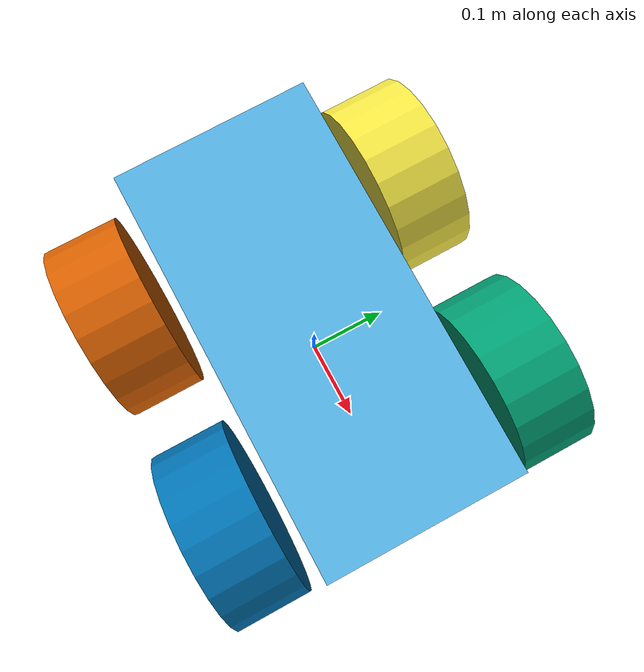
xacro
<?xml version='1.0'?>

<robot name="trackbot" xmlns:xacro="http://www.ros.org/wiki/xacro">

  <link name="base_footprint"></link>
  <xacro:include filename="$(find gcamp_gazebo)/urdf/trackbot.gazebo" />

  <joint name="base_footprint_joint" type="fixed">
    <origin xyz="0 0 0" rpy="0 0 0" />
    <parent link="base_footprint" />
    <child link="base_link" />
  </joint>

  <link name='base_link'>
    <pose frame=''>0 0 0 0 0 0</pose>

    <inertial>
      <origin xyz="0.0 0 0.118" rpy="1.5708 -0 0" />
      <mass value="13.14" />
      <inertia ixx="0.10019" ixy="0.0" ixz="0.0" iyy="0.345043" iyz="0.0" izz="0.302044" />
    </inertial>

    <collision name='base_link_collision'>
      <origin xyz="0.0 0 0.118" rpy="0 -0 0" />
      <geometry>
        <box size="0.50017 0.24093 0.139" />
      </geometry>
    </collision>

    <visual name='base_link_visual'>
      <origin xyz="0.0 0 0.118" rpy="0 -0 0" />
      <geometry>
        <box size="0.50017 0.24093 0.139" />
      </geometry>
    </visual>
  </link>

  <link name="front_left_wheel">
    <inertial>
      <mass value="8.0" />
      <origin xyz="0.0 0 0" rpy=" 0 1.5707 1.5707" />
      <inertia ixx="0.1" ixy="0" ixz="0" iyy="0.1" iyz="0" izz="0.1" />
    </inertial>

    <visual>
      <origin xyz="0.0 0 0" rpy=" 0 1.5707 1.5707" />
      <geometry>
        <cylinder length="0.09728" radius="0.12" />
      </geometry>
    </visual>

    <collision>
      <origin xyz="0.0 0 0" rpy=" 0 1.5707 1.5707" />
      <geometry>
        <cylinder length="0.09728" radius="0.12" />
      </geometry>
    </collision>
  </link>

  <link name="back_left_wheel">
    <inertial>
      <mass value="8.0" />
      <origin xyz="0.0 0 0" rpy=" 0 1.5707 1.5707" />
      <inertia ixx="0.1" ixy="0" ixz="0" iyy="0.1" iyz="0" izz="0.1" />
    </inertial>

    <visual>
      <origin xyz="0.0 0 0" rpy=" 0 1.5707 1.5707" />
      <geometry>
        <cylinder length="0.09728" radius="0.12" />
      </geometry>
    </visual>

    <collision>
      <origin xyz="0.0 0 0" rpy=" 0 1.5707 1.5707" />
      <geometry>
        <cylinder length="0.09728" radius="0.12" />
      </geometry>
    </collision>
  </link>

  <link name="front_right_wheel">
    <inertial>
      <mass value="8.0" />
      <origin xyz="0.0 0 0" rpy=" 0 1.5707 1.5707" />
      <inertia ixx="0.1" ixy="0" ixz="0" iyy="0.1" iyz="0" izz="0.1" />
    </inertial>

    <visual>
      <origin xyz="0.0 0 0" rpy=" 0 1.5707 1.5707" />
      <geometry>
        <cylinder length="0.09728" radius="0.12" />
      </geometry>
    </visual>

    <collision>
      <origin xyz="0.0 0 0" rpy=" 0 1.5707 1.5707" />
      <geometry>
        <cylinder length="0.09728" radius="0.12" />
      </geometry>
    </collision>
  </link>

  <link name="back_right_wheel">
    <inertial>
      <mass value="8.0" />
      <origin xyz="0.0 0 0" rpy=" 0 1.5707 1.5707" />
      <inertia ixx="0.1" ixy="0" ixz="0" iyy="0.1" iyz="0" izz="0.1" />
    </inertial>

    <visual>
      <origin xyz="0.0 0 0" rpy=" 0 1.5707 1.5707" />
      <geometry>
        <cylinder length="0.09728" radius="0.12" />
      </geometry>
    </visual>

    <collision>
      <origin xyz="0.0 0 0" rpy=" 0 1.5707 1.5707" />
      <geometry>
        <cylinder length="0.09728" radius="0.12" />
      </geometry>
    </collision>
  </link>

  <joint type="continuous" name="front_left_wheel_joint">
    <origin xyz="0.15 0.1985 0.01855" rpy="0 0 0" />
    <child link="front_left_wheel" />
    <parent link="base_link" />
    <axis xyz="0 1 0" rpy="0 0 0" />
    <limit effort="10000" velocity="1000" />
    <dynamics damping="1.0" friction="5.0" />
  </joint>

  <joint type="continuous" name="front_right_wheel_joint">
    <origin xyz="0.15 -0.1985 0.01855" rpy="0 0 0" />
    <child link="front_right_wheel" />
    <parent link="base_link" />
    <axis xyz="0 1 0" rpy="0 0 0" />
    <limit effort="10000" velocity="1000" />
    <dynamics damping="1.0" friction="5.0" />
  </joint>

  <joint type="continuous" name="back_left_wheel_joint">
    <origin xyz="-0.15 0.1985 0.01855" rpy="0 0 0" />
    <child link="back_left_wheel" />
    <parent link="base_link" />
    <axis xyz="0 1 0" rpy="0 0 0" />
    <limit effort="10000" velocity="1000" />
    <dynamics damping="1.0" friction="5.0" />
  </joint>

  <joint type="continuous" name="back_right_wheel_joint">
    <origin xyz="-0.15 -0.1985 0.01855" rpy="0 0 0" />
    <child link="back_right_wheel" />
    <parent link="base_link" />
    <axis xyz="0 1 0" rpy="0 0 0" />
    <limit effort="10000" velocity="1000" />
    <dynamics damping="1.0" friction="5.0" />
  </joint>

</robot>
